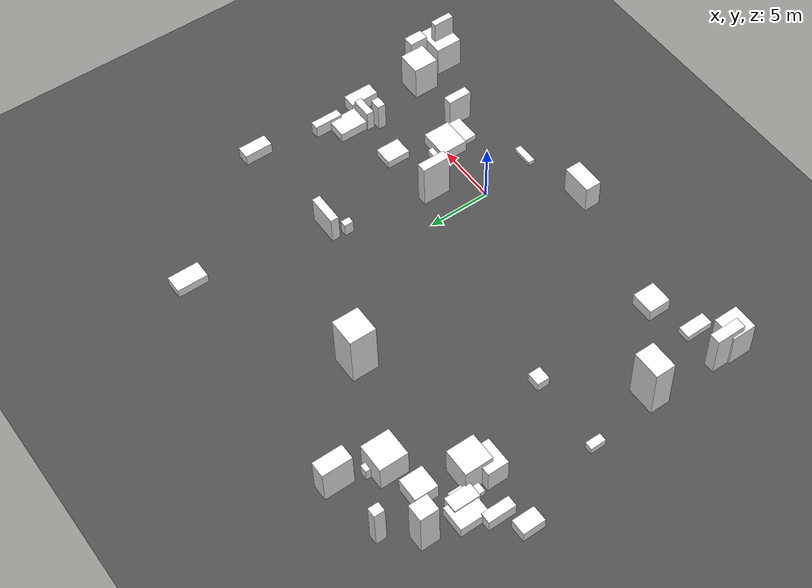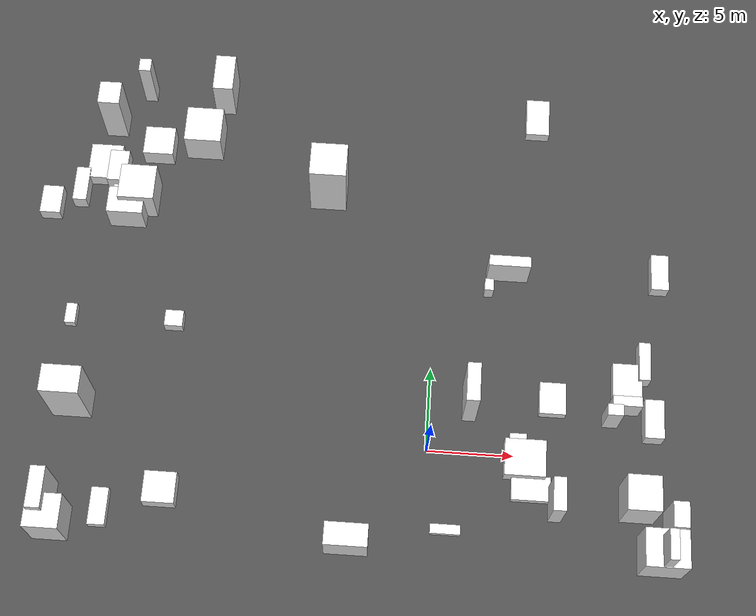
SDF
<sdf version="1.6">
 <world name="mirror_edge_world">
  <model name="ground_plane">
   <static>true</static>
   <link name="link">
    <collision name="collision">
     <geometry><plane><normal>0 0 1</normal><size>100 100</size></plane></geometry>
    </collision>
    <visual name="visual">
     <geometry><plane><normal>0 0 1</normal><size>100 100</size></plane></geometry>
     <material>
      <ambient>0.3 0.3 0.3 1</ambient>
      <diffuse>0.3 0.3 0.3 1</diffuse>
      <specular>0.5 0.5 0.5 1</specular>
      <emissive>0 0 0 1</emissive>
     </material>
    </visual>
   </link>
  </model>
  <model name="block_17_45">
   <static>true</static>
   <link name="link">
    <pose>-14.83157617791308 19.2986484539632 1.202468939755702 0 0 0</pose>
    <visual name="visual">
     <geometry><box><size>2.259564329900974 2.272672495157928 2.404937879511404</size></box></geometry>
     <material>
      <ambient>1 1 1 1</ambient>
      <diffuse>1 1 1 1</diffuse>
      <specular>0.9 0.9 0.9 1</specular>
      <emissive>0.05 0.05 0.05 1</emissive>
     </material>
    </visual>
   </link>
  </model>
  <model name="block_17_46">
   <static>true</static>
   <link name="link">
    <pose>-20.041441581613256 16.793990532632215 0.5384627229349109 0 0 0</pose>
    <collision name="collision">
     <geometry><box><size>1.2044187001421913 2.056023656409508 1.0769254458698219</size></box></geometry>
    </collision>
    <visual name="visual">
     <geometry><box><size>1.2044187001421913 2.056023656409508 1.0769254458698219</size></box></geometry>
     <material>
      <ambient>1 1 1 1</ambient>
      <diffuse>1 1 1 1</diffuse>
      <specular>0.9 0.9 0.9 1</specular>
      <emissive>0.05 0.05 0.05 1</emissive>
     </material>
    </visual>
   </link>
  </model>
  <model name="block_17_50">
   <static>true</static>
   <link name="link">
    <pose>13.47006834684062 11.824837719589581 0.4711961646514751 0 0 0</pose>
    <collision name="collision">
     <geometry><box><size>1.048641483284718 2.266793446364818 0.9423923293029502</size></box></geometry>
    </collision>
    <visual name="visual">
     <geometry><box><size>1.048641483284718 2.266793446364818 0.9423923293029502</size></box></geometry>
     <material>
      <ambient>1 1 1 1</ambient>
      <diffuse>1 1 1 1</diffuse>
      <specular>0.9 0.9 0.9 1</specular>
      <emissive>0.05 0.05 0.05 1</emissive>
     </material>
    </visual>
   </link>
  </model>
  <model name="block_17_53">
   <static>true</static>
   <link name="link">
    <pose>-20.55487658143695 20.155962020148536 2.052439718938346 0 0 0</pose>
    <visual name="visual">
     <geometry><box><size>1.3268251233789365 1.4747503396686135 4.104879437876692</size></box></geometry>
     <material>
      <ambient>1 1 1 1</ambient>
      <diffuse>1 1 1 1</diffuse>
      <specular>0.9 0.9 0.9 1</specular>
      <emissive>0.05 0.05 0.05 1</emissive>
     </material>
    </visual>
   </link>
  </model>
  <model name="block_17_55">
   <static>true</static>
   <link name="link">
    <pose>-18.43641993089639 15.032102302185002 1.252410745560056 0 0 0</pose>
    <visual name="visual">
     <geometry><box><size>2.180636903048022 2.219618855459766 2.504821491120112</size></box></geometry>
     <material>
      <ambient>1 1 1 1</ambient>
      <diffuse>1 1 1 1</diffuse>
      <specular>0.9 0.9 0.9 1</specular>
      <emissive>0.05 0.05 0.05 1</emissive>
     </material>
    </visual>
   </link>
  </model>
  <model name="block_17_59">
   <static>true</static>
   <link name="link">
    <pose>-21.407588892735227 -4.488601985075637 1.7735091991605658 0 0 0</pose>
    <visual name="visual">
     <geometry><box><size>0.8511889785170652 2.365145881865373 3.5470183983211316</size></box></geometry>
     <material>
      <ambient>1 1 1 1</ambient>
      <diffuse>1 1 1 1</diffuse>
      <specular>0.9 0.9 0.9 1</specular>
      <emissive>0.05 0.05 0.05 1</emissive>
     </material>
    </visual>
   </link>
  </model>
  <model name="block_17_64">
   <static>true</static>
   <link name="link">
    <pose>13.296174169659992 -5.305955687161733 1.3144693561702374 0 0 0</pose>
    <visual name="visual">
     <geometry><box><size>2.4543546980190003 2.167417037965644 2.628938712340475</size></box></geometry>
     <material>
      <ambient>1 1 1 1</ambient>
      <diffuse>1 1 1 1</diffuse>
      <specular>0.9 0.9 0.9 1</specular>
      <emissive>0.05 0.05 0.05 1</emissive>
     </material>
    </visual>
   </link>
  </model>
  <model name="block_18_0">
   <static>true</static>
   <link name="link">
    <pose>-18.421214742691888 -4.62631382488877 0.2899829295596249 0 0 0</pose>
    <collision name="collision">
     <geometry><box><size>0.996296989103082 2.1625450335697844 0.5799658591192498</size></box></geometry>
    </collision>
    <visual name="visual">
     <geometry><box><size>0.996296989103082 2.1625450335697844 0.5799658591192498</size></box></geometry>
     <material>
      <ambient>1 1 1 1</ambient>
      <diffuse>1 1 1 1</diffuse>
      <specular>0.9 0.9 0.9 1</specular>
      <emissive>0.05 0.05 0.05 1</emissive>
     </material>
    </visual>
   </link>
  </model>
  <model name="block_18_4">
   <static>true</static>
   <link name="link">
    <pose>14.017258658999268 -3.4712311769804973 1.470062252985782 0 0 0</pose>
    <visual name="visual">
     <geometry><box><size>0.8995281741307786 1.470200678224472 2.940124505971564</size></box></geometry>
     <material>
      <ambient>1 1 1 1</ambient>
      <diffuse>1 1 1 1</diffuse>
      <specular>0.9 0.9 0.9 1</specular>
      <emissive>0.05 0.05 0.05 1</emissive>
     </material>
    </visual>
   </link>
  </model>
  <model name="block_18_7">
   <static>true</static>
   <link name="link">
    <pose>13.278682122238038 -5.487601334451748 2.2055358918739847 0 0 0</pose>
    <visual name="visual">
     <geometry><box><size>0.5100498254138621 1.6981531222361674 4.411071783747969</size></box></geometry>
     <material>
      <ambient>1 1 1 1</ambient>
      <diffuse>1 1 1 1</diffuse>
      <specular>0.9 0.9 0.9 1</specular>
      <emissive>0.05 0.05 0.05 1</emissive>
     </material>
    </visual>
   </link>
  </model>
  <model name="block_18_8">
   <static>true</static>
   <link name="link">
    <pose>-15.032044791118226 -3.4190202477545633 0.5302772152260771 0 0 0</pose>
    <visual name="visual">
     <geometry><box><size>1.857360868671411 1.8126009093193562 1.0605544304521541</size></box></geometry>
     <material>
      <ambient>1 1 1 1</ambient>
      <diffuse>1 1 1 1</diffuse>
      <specular>0.9 0.9 0.9 1</specular>
      <emissive>0.05 0.05 0.05 1</emissive>
     </material>
    </visual>
   </link>
  </model>
  <model name="block_18_12">
   <static>true</static>
   <link name="link">
    <pose>11.356476577575954 3.2596869207185444 0.8668146355271114 0 0 0</pose>
    <visual name="visual">
     <geometry><box><size>1.6924702858085936 0.6025662093265285 1.7336292710542227</size></box></geometry>
     <material>
      <ambient>1 1 1 1</ambient>
      <diffuse>1 1 1 1</diffuse>
      <specular>0.9 0.9 0.9 1</specular>
      <emissive>0.05 0.05 0.05 1</emissive>
     </material>
    </visual>
   </link>
  </model>
  <model name="block_18_13">
   <static>true</static>
   <link name="link">
    <pose>12.986845558625944 2.488867020387926 0.5604733523140011 0 0 0</pose>
    <visual name="visual">
     <geometry><box><size>1.117192757599642 2.3222339838943835 1.1209467046280022</size></box></geometry>
     <material>
      <ambient>1 1 1 1</ambient>
      <diffuse>1 1 1 1</diffuse>
      <specular>0.9 0.9 0.9 1</specular>
      <emissive>0.05 0.05 0.05 1</emissive>
     </material>
    </visual>
   </link>
  </model>
  <model name="block_18_16">
   <static>true</static>
   <link name="link">
    <pose>-21.666361460355656 6.950234388974047 0.2921476383616722 0 0 0</pose>
    <collision name="collision">
     <geometry><box><size>0.6485469653739651 1.2428312099882908 0.5842952767233444</size></box></geometry>
    </collision>
    <visual name="visual">
     <geometry><box><size>0.6485469653739651 1.2428312099882908 0.5842952767233444</size></box></geometry>
     <material>
      <ambient>1 1 1 1</ambient>
      <diffuse>1 1 1 1</diffuse>
      <specular>0.9 0.9 0.9 1</specular>
      <emissive>0.05 0.05 0.05 1</emissive>
     </material>
    </visual>
   </link>
  </model>
  <model name="block_18_20">
   <static>true</static>
   <link name="link">
    <pose>-22.146613405576836 15.394792812340512 0.5224026196374334 0 0 0</pose>
    <collision name="collision">
     <geometry><box><size>0.8598031727698161 2.223983943784267 1.0448052392748668</size></box></geometry>
    </collision>
    <visual name="visual">
     <geometry><box><size>0.8598031727698161 2.223983943784267 1.0448052392748668</size></box></geometry>
     <material>
      <ambient>1 1 1 1</ambient>
      <diffuse>1 1 1 1</diffuse>
      <specular>0.9 0.9 0.9 1</specular>
      <emissive>0.05 0.05 0.05 1</emissive>
     </material>
    </visual>
   </link>
  </model>
  <model name="block_18_21">
   <static>true</static>
   <link name="link">
    <pose>-23.859177767853367 14.25993344563739 0.4627978696348933 0 0 0</pose>
    <collision name="collision">
     <geometry><box><size>1.252582330338801 1.8056679498932175 0.9255957392697866</size></box></geometry>
    </collision>
    <visual name="visual">
     <geometry><box><size>1.252582330338801 1.8056679498932175 0.9255957392697866</size></box></geometry>
     <material>
      <ambient>1 1 1 1</ambient>
      <diffuse>1 1 1 1</diffuse>
      <specular>0.9 0.9 0.9 1</specular>
      <emissive>0.05 0.05 0.05 1</emissive>
     </material>
    </visual>
   </link>
  </model>
  <model name="block_18_22">
   <static>true</static>
   <link name="link">
    <pose>4.335931959807954 11.35738635920626 1.1500461785807181 0 0 0</pose>
    <visual name="visual">
     <geometry><box><size>2.4796150091795264 0.6668489622917846 2.3000923571614362</size></box></geometry>
     <material>
      <ambient>1 1 1 1</ambient>
      <diffuse>1 1 1 1</diffuse>
      <specular>0.9 0.9 0.9 1</specular>
      <emissive>0.05 0.05 0.05 1</emissive>
     </material>
    </visual>
   </link>
  </model>
  <model name="block_18_28">
   <static>true</static>
   <link name="link">
    <pose>1.2380207603433462 -4.574201913940705 0.17869513898986278 0 0 0</pose>
    <collision name="collision">
     <geometry><box><size>1.7325601442012029 0.5600721711907131 0.35739027797972556</size></box></geometry>
    </collision>
    <visual name="visual">
     <geometry><box><size>1.7325601442012029 0.5600721711907131 0.35739027797972556</size></box></geometry>
     <material>
      <ambient>1 1 1 1</ambient>
      <diffuse>1 1 1 1</diffuse>
      <specular>0.9 0.9 0.9 1</specular>
      <emissive>0.05 0.05 0.05 1</emissive>
     </material>
    </visual>
   </link>
  </model>
  <model name="block_18_33">
   <static>true</static>
   <link name="link">
    <pose>-13.857457918661332 22.686545508052312 1.5419050046144822 0 0 0</pose>
    <visual name="visual">
     <geometry><box><size>1.239816914975837 2.3679703692664527 3.0838100092289644</size></box></geometry>
     <material>
      <ambient>1 1 1 1</ambient>
      <diffuse>1 1 1 1</diffuse>
      <specular>0.9 0.9 0.9 1</specular>
      <emissive>0.05 0.05 0.05 1</emissive>
     </material>
    </visual>
   </link>
  </model>
  <model name="block_18_34">
   <static>true</static>
   <link name="link">
    <pose>7.389901285885205 -2.7054760208765667 1.3598077484742284 0 0 0</pose>
    <visual name="visual">
     <geometry><box><size>0.7321333336982441 1.927276731316452 2.7196154969484567</size></box></geometry>
     <material>
      <ambient>1 1 1 1</ambient>
      <diffuse>1 1 1 1</diffuse>
      <specular>0.9 0.9 0.9 1</specular>
      <emissive>0.05 0.05 0.05 1</emissive>
     </material>
    </visual>
   </link>
  </model>
  <model name="block_18_36">
   <static>true</static>
   <link name="link">
    <pose>-19.639407663669324 16.153857567674507 0.22615767500995326 0 0 0</pose>
    <collision name="collision">
     <geometry><box><size>1.2577521175059088 2.152145712593269 0.4523153500199065</size></box></geometry>
    </collision>
    <visual name="visual">
     <geometry><box><size>1.2577521175059088 2.152145712593269 0.4523153500199065</size></box></geometry>
     <material>
      <ambient>1 1 1 1</ambient>
      <diffuse>1 1 1 1</diffuse>
      <specular>0.9 0.9 0.9 1</specular>
      <emissive>0.05 0.05 0.05 1</emissive>
     </material>
    </visual>
   </link>
  </model>
  <model name="block_18_37">
   <static>true</static>
   <link name="link">
    <pose>-18.72835054388961 22.538790925499445 1.8312838979771293 0 0 0</pose>
    <visual name="visual">
     <geometry><box><size>0.7372925545322704 0.8380535344718565 3.6625677959542586</size></box></geometry>
     <material>
      <ambient>1 1 1 1</ambient>
      <diffuse>1 1 1 1</diffuse>
      <specular>0.9 0.9 0.9 1</specular>
      <emissive>0.05 0.05 0.05 1</emissive>
     </material>
    </visual>
   </link>
  </model>
  <model name="block_18_40">
   <static>true</static>
   <link name="link">
    <pose>7.165922020089379 3.4902607817220295 0.3420472199456542 0 0 0</pose>
    <collision name="collision">
     <geometry><box><size>1.5434147963136375 1.913208286667665 0.6840944398913084</size></box></geometry>
    </collision>
    <visual name="visual">
     <geometry><box><size>1.5434147963136375 1.913208286667665 0.6840944398913084</size></box></geometry>
     <material>
      <ambient>1 1 1 1</ambient>
      <diffuse>1 1 1 1</diffuse>
      <specular>0.9 0.9 0.9 1</specular>
      <emissive>0.05 0.05 0.05 1</emissive>
     </material>
    </visual>
   </link>
  </model>
  <model name="block_18_41">
   <static>true</static>
   <link name="link">
    <pose>-14.510571345671945 20.164464621454126 0.5037213417122117 0 0 0</pose>
    <visual name="visual">
     <geometry><box><size>0.6122643384936117 1.3404345199607737 1.0074426834244234</size></box></geometry>
     <material>
      <ambient>1 1 1 1</ambient>
      <diffuse>1 1 1 1</diffuse>
      <specular>0.9 0.9 0.9 1</specular>
      <emissive>0.05 0.05 0.05 1</emissive>
     </material>
    </visual>
   </link>
  </model>
  <model name="block_18_42">
   <static>true</static>
   <link name="link">
    <pose>-15.436641455683176 6.949792788320992 0.4026556766491699 0 0 0</pose>
    <collision name="collision">
     <geometry><box><size>1.0919559501219258 0.9991950087791839 0.8053113532983398</size></box></geometry>
    </collision>
    <visual name="visual">
     <geometry><box><size>1.0919559501219258 0.9991950087791839 0.8053113532983398</size></box></geometry>
     <material>
      <ambient>1 1 1 1</ambient>
      <diffuse>1 1 1 1</diffuse>
      <specular>0.9 0.9 0.9 1</specular>
      <emissive>0.05 0.05 0.05 1</emissive>
     </material>
    </visual>
   </link>
  </model>
  <model name="block_18_44">
   <static>true</static>
   <link name="link">
    <pose>-4.284355492624005 -5.689517516768701 1.1869593776250202 0 0 0</pose>
    <visual name="visual">
     <geometry><box><size>2.4662211905948483 1.3134335240949975 2.3739187552500405</size></box></geometry>
     <material>
      <ambient>1 1 1 1</ambient>
      <diffuse>1 1 1 1</diffuse>
      <specular>0.9 0.9 0.9 1</specular>
      <emissive>0.05 0.05 0.05 1</emissive>
     </material>
    </visual>
   </link>
  </model>
  <model name="block_18_46">
   <static>true</static>
   <link name="link">
    <pose>-19.078765946042243 13.96308696773048 1.0253080170952422 0 0 0</pose>
    <visual name="visual">
     <geometry><box><size>2.1945467314683933 1.6822108960724467 2.0506160341904844</size></box></geometry>
     <material>
      <ambient>1 1 1 1</ambient>
      <diffuse>1 1 1 1</diffuse>
      <specular>0.9 0.9 0.9 1</specular>
      <emissive>0.05 0.05 0.05 1</emissive>
     </material>
    </visual>
   </link>
  </model>
  <model name="block_18_48">
   <static>true</static>
   <link name="link">
    <pose>11.49222697387976 4.636392689644826 0.418212655705453 0 0 0</pose>
    <collision name="collision">
     <geometry><box><size>1.7196992798520727 2.4148021802599766 0.836425311410906</size></box></geometry>
    </collision>
    <visual name="visual">
     <geometry><box><size>1.7196992798520727 2.4148021802599766 0.836425311410906</size></box></geometry>
     <material>
      <ambient>1 1 1 1</ambient>
      <diffuse>1 1 1 1</diffuse>
      <specular>0.9 0.9 0.9 1</specular>
      <emissive>0.05 0.05 0.05 1</emissive>
     </material>
    </visual>
   </link>
  </model>
  <model name="block_18_49">
   <static>true</static>
   <link name="link">
    <pose>-6.8264500483407495 16.19580774891239 2.3089082444618185 0 0 0</pose>
    <visual name="visual">
     <geometry><box><size>2.1996841683028325 2.103739599987528 4.617816488923637</size></box></geometry>
     <material>
      <ambient>1 1 1 1</ambient>
      <diffuse>1 1 1 1</diffuse>
      <specular>0.9 0.9 0.9 1</specular>
      <emissive>0.05 0.05 0.05 1</emissive>
     </material>
    </visual>
   </link>
  </model>
  <model name="block_18_54">
   <static>true</static>
   <link name="link">
    <pose>5.223337402980562 0.03286789997760575 0.280745920435812 0 0 0</pose>
    <collision name="collision">
     <geometry><box><size>1.0025949070738551 2.468190568811945 0.561491840871624</size></box></geometry>
    </collision>
    <visual name="visual">
     <geometry><box><size>1.0025949070738551 2.468190568811945 0.561491840871624</size></box></geometry>
     <material>
      <ambient>1 1 1 1</ambient>
      <diffuse>1 1 1 1</diffuse>
      <specular>0.9 0.9 0.9 1</specular>
      <emissive>0.05 0.05 0.05 1</emissive>
     </material>
    </visual>
   </link>
  </model>
  <model name="block_18_58">
   <static>true</static>
   <link name="link">
    <pose>-20.755957779055823 1.4908195529198753 2.24223824631756 0 0 0</pose>
    <visual name="visual">
     <geometry><box><size>2.257464635197083 1.6068414982734793 4.48447649263512</size></box></geometry>
     <material>
      <ambient>1 1 1 1</ambient>
      <diffuse>1 1 1 1</diffuse>
      <specular>0.9 0.9 0.9 1</specular>
      <emissive>0.05 0.05 0.05 1</emissive>
     </material>
    </visual>
   </link>
  </model>
  <model name="block_18_60">
   <static>true</static>
   <link name="link">
    <pose>10.536774742417116 2.474984561729733 1.2023105338510105 0 0 0</pose>
    <visual name="visual">
     <geometry><box><size>0.8987722422222619 0.671832266568869 2.404621067702021</size></box></geometry>
     <material>
      <ambient>1 1 1 1</ambient>
      <diffuse>1 1 1 1</diffuse>
      <specular>0.9 0.9 0.9 1</specular>
      <emissive>0.05 0.05 0.05 1</emissive>
     </material>
    </visual>
   </link>
  </model>
  <model name="block_18_61">
   <static>true</static>
   <link name="link">
    <pose>-20.97755299353643 -5.639766613506738 1.497378229350845 0 0 0</pose>
    <visual name="visual">
     <geometry><box><size>2.0004865283929316 1.9573005380954407 2.99475645870169</size></box></geometry>
     <material>
      <ambient>1 1 1 1</ambient>
      <diffuse>1 1 1 1</diffuse>
      <specular>0.9 0.9 0.9 1</specular>
      <emissive>0.05 0.05 0.05 1</emissive>
     </material>
    </visual>
   </link>
  </model>
  <model name="block_18_62">
   <static>true</static>
   <link name="link">
    <pose>12.47175718134909 5.988991344372596 0.5541276648776337 0 0 0</pose>
    <collision name="collision">
     <geometry><box><size>0.6767674174930138 2.3242363213974198 1.1082553297552673</size></box></geometry>
    </collision>
    <visual name="visual">
     <geometry><box><size>0.6767674174930138 2.3242363213974198 1.1082553297552673</size></box></geometry>
     <material>
      <ambient>1 1 1 1</ambient>
      <diffuse>1 1 1 1</diffuse>
      <specular>0.9 0.9 0.9 1</specular>
      <emissive>0.05 0.05 0.05 1</emissive>
     </material>
    </visual>
   </link>
  </model>
  <model name="block_18_65">
   <static>true</static>
   <link name="link">
    <pose>12.022584885431144 -2.400341272480022 1.4965786712777185 0 0 0</pose>
    <visual name="visual">
     <geometry><box><size>1.918018468556593 2.031930941480004 2.993157342555437</size></box></geometry>
     <material>
      <ambient>1 1 1 1</ambient>
      <diffuse>1 1 1 1</diffuse>
      <specular>0.9 0.9 0.9 1</specular>
      <emissive>0.05 0.05 0.05 1</emissive>
     </material>
    </visual>
   </link>
  </model>
  <model name="block_18_67">
   <static>true</static>
   <link name="link">
    <pose>6.017067735885828 -1.9282430848534995 0.24086377929467329 0 0 0</pose>
    <collision name="collision">
     <geometry><box><size>2.2640379920342486 1.4205626437570598 0.48172755858934657</size></box></geometry>
    </collision>
    <visual name="visual">
     <geometry><box><size>2.2640379920342486 1.4205626437570598 0.48172755858934657</size></box></geometry>
     <material>
      <ambient>1 1 1 1</ambient>
      <diffuse>1 1 1 1</diffuse>
      <specular>0.9 0.9 0.9 1</specular>
      <emissive>0.05 0.05 0.05 1</emissive>
     </material>
    </visual>
   </link>
  </model>
  <model name="block_19_1">
   <static>true</static>
   <link name="link">
    <pose>3.232203185528732 10.282766406520217 0.5536419642142931 0 0 0</pose>
    <collision name="collision">
     <geometry><box><size>0.5360199703779398 0.7380872210330562 1.1072839284285863</size></box></geometry>
    </collision>
    <visual name="visual">
     <geometry><box><size>0.5360199703779398 0.7380872210330562 1.1072839284285863</size></box></geometry>
     <material>
      <ambient>1 1 1 1</ambient>
      <diffuse>1 1 1 1</diffuse>
      <specular>0.9 0.9 0.9 1</specular>
      <emissive>0.05 0.05 0.05 1</emissive>
     </material>
    </visual>
   </link>
  </model>
  <model name="block_19_2">
   <static>true</static>
   <link name="link">
    <pose>5.98351227862743 22.136899708237962 0.37994692123590434 0 0 0</pose>
    <collision name="collision">
     <geometry><box><size>1.4319623089529516 2.4731657347397893 0.7598938424718087</size></box></geometry>
    </collision>
    <visual name="visual">
     <geometry><box><size>1.4319623089529516 2.4731657347397893 0.7598938424718087</size></box></geometry>
     <material>
      <ambient>1 1 1 1</ambient>
      <diffuse>1 1 1 1</diffuse>
      <specular>0.9 0.9 0.9 1</specular>
      <emissive>0.05 0.05 0.05 1</emissive>
     </material>
    </visual>
   </link>
  </model>
  <model name="block_19_3">
   <static>true</static>
   <link name="link">
    <pose>-17.650584936903037 18.56786306362965 0.6601043547537071 0 0 0</pose>
    <visual name="visual">
     <geometry><box><size>1.86306556592547 1.8644885537196736 1.3202087095074142</size></box></geometry>
     <material>
      <ambient>1 1 1 1</ambient>
      <diffuse>1 1 1 1</diffuse>
      <specular>0.9 0.9 0.9 1</specular>
      <emissive>0.05 0.05 0.05 1</emissive>
     </material>
    </visual>
   </link>
  </model>
  <model name="block_19_4">
   <static>true</static>
   <link name="link">
    <pose>5.610475371555278 -0.2720071007402165 0.5181176991213492 0 0 0</pose>
    <collision name="collision">
     <geometry><box><size>2.377516155696489 2.1620872131125433 1.0362353982426984</size></box></geometry>
    </collision>
    <visual name="visual">
     <geometry><box><size>2.377516155696489 2.1620872131125433 1.0362353982426984</size></box></geometry>
     <material>
      <ambient>1 1 1 1</ambient>
      <diffuse>1 1 1 1</diffuse>
      <specular>0.9 0.9 0.9 1</specular>
      <emissive>0.05 0.05 0.05 1</emissive>
     </material>
    </visual>
   </link>
  </model>
  <model name="block_19_9">
   <static>true</static>
   <link name="link">
    <pose>2.34036977603326 3.114660717361118 1.9199793117188204 0 0 0</pose>
    <visual name="visual">
     <geometry><box><size>0.7760176082307431 2.259039833665118 3.839958623437641</size></box></geometry>
     <material>
      <ambient>1 1 1 1</ambient>
      <diffuse>1 1 1 1</diffuse>
      <specular>0.9 0.9 0.9 1</specular>
      <emissive>0.05 0.05 0.05 1</emissive>
     </material>
    </visual>
   </link>
  </model>
  <model name="block_19_12">
   <static>true</static>
   <link name="link">
    <pose>-20.890482336990864 17.08226066805726 0.47053795517914004 0 0 0</pose>
    <collision name="collision">
     <geometry><box><size>1.990354255881948 2.3136197567686017 0.9410759103582801</size></box></geometry>
    </collision>
    <visual name="visual">
     <geometry><box><size>1.990354255881948 2.3136197567686017 0.9410759103582801</size></box></geometry>
     <material>
      <ambient>1 1 1 1</ambient>
      <diffuse>1 1 1 1</diffuse>
      <specular>0.9 0.9 0.9 1</specular>
      <emissive>0.05 0.05 0.05 1</emissive>
     </material>
    </visual>
   </link>
  </model>
 </world>
</sdf>
